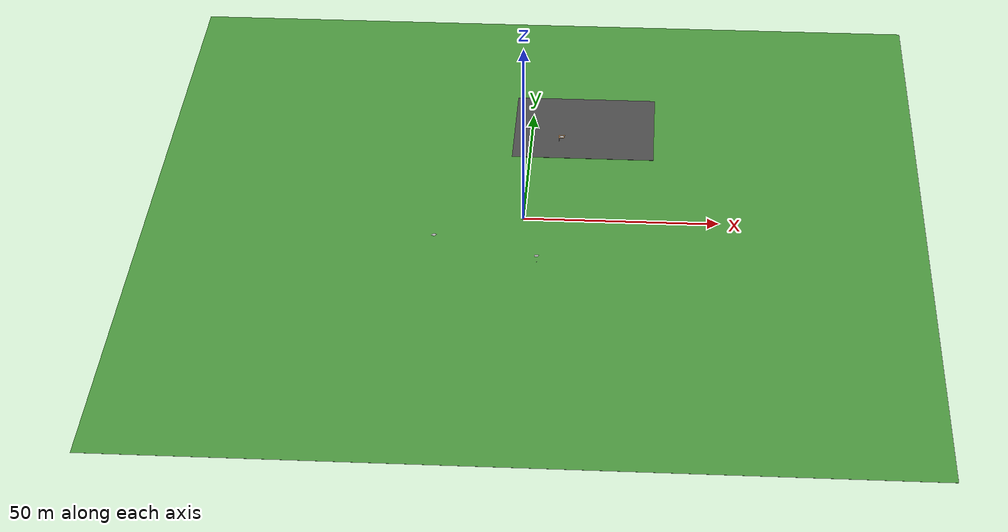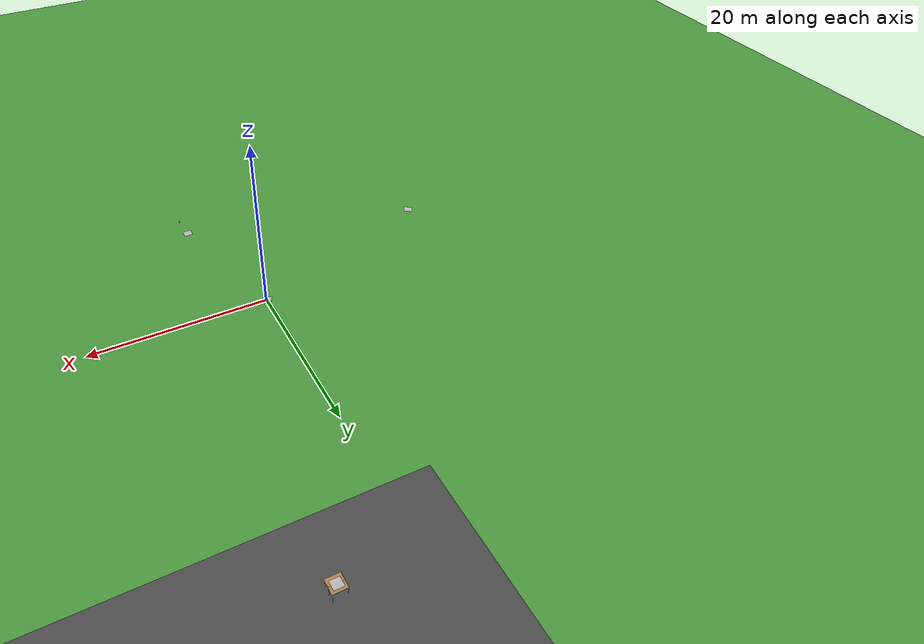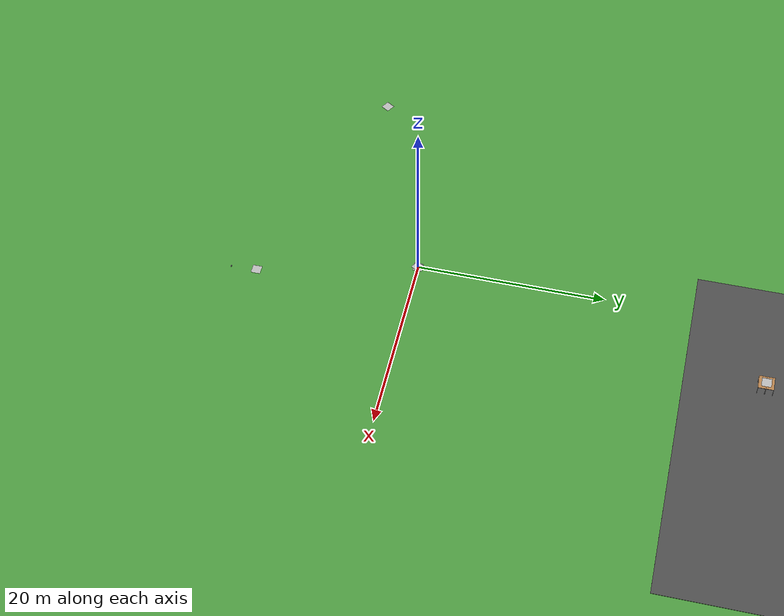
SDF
<sdf version="1.7">
 <world name="default">
  <light name="sun" type="directional">
   <pose>0 0 10 0 -0 0</pose>
   <diffuse>0.8 0.8 0.8 1</diffuse>
   <specular>0.2 0.2 0.2 1</specular>
   <attenuation>
    <range>1000</range>
    <constant>0.9</constant>
    <linear>0.01</linear>
    <quadratic>0.001</quadratic>
   </attenuation>
   <direction>-0.5 0.1 -0.9</direction>
   <spot><inner_angle>0</inner_angle><outer_angle>0</outer_angle><falloff>0</falloff></spot>
  </light>
  <model name="grass_plane">
   <static>1</static>
   <link name="grass_link">
    <collision name="collision"><geometry><box><size>200 200 0.02</size></box></geometry></collision>
    <visual name="visual">
     <cast_shadows>0</cast_shadows>
     <geometry><box><size>200 200 0.02</size></box></geometry>
     <material>
      <script>
       <uri>model://grass_plane/materials/scripts</uri>
       <uri>model://grass_plane/materials/textures</uri>
       <name>grass</name>
      </script>
     </material>
    </visual>
   </link>
   <pose>2.74126 0.128519 -0.01 0 -0 0</pose>
  </model>
  <scene>
   <ambient>0.8 0.8 0.8 1</ambient>
   <background>0.8 0.9 1 1</background>
   <shadows>0</shadows>
   <grid>0</grid>
   <origin_visual>0</origin_visual>
  </scene>
  <physics name="default_physics" default="0" type="ode">
   <ode>
    <solver>
     <type>quick</type>
     <iters>10</iters>
     <sor>1.3</sor>
     <use_dynamic_moi_rescaling>0</use_dynamic_moi_rescaling>
    </solver>
    <constraints>
     <cfm>0</cfm>
     <erp>0.2</erp>
     <contact_max_correcting_vel>100</contact_max_correcting_vel>
     <contact_surface_layer>0.001</contact_surface_layer>
    </constraints>
   </ode>
   <max_step_size>0.004</max_step_size>
   <real_time_factor>1</real_time_factor>
   <real_time_update_rate>250</real_time_update_rate>
  </physics>
  <gravity>0 0 -9.8066</gravity>
  <magnetic_field>6e-06 2.3e-05 -4.2e-05</magnetic_field>
  <atmosphere type="adiabatic"/>
  <spherical_coordinates>
   <surface_model>EARTH_WGS84</surface_model>
   <latitude_deg>0</latitude_deg>
   <longitude_deg>0</longitude_deg>
   <elevation>0</elevation>
   <heading_deg>0</heading_deg>
  </spherical_coordinates>
  <model name="landing_pad_vehicle">
   <static>1</static>
   <link name="landing_pad_link">
    <visual name="visual_landing_pad">
     <pose>0 0 0 0 0 1.5708</pose>
     <cast_shadows>0</cast_shadows>
     <geometry><box><size>1 1 0.001</size></box></geometry>
     <material>
      <script>
       <uri>model://landing_pad/materials/scripts</uri>
       <uri>model://landing_pad/materials/textures</uri>
       <name>landing_pad</name>
      </script>
     </material>
    </visual>
   </link>
   <pose>8.04084 37.3545 1.615 0 0 -1.56663</pose>
  </model>
  <model name="table">
   <static>1</static>
   <link name="table_link_0">
    <collision name="table_surface_0">
     <pose>0 0 1 0 -0 0</pose>
     <geometry><box><size>1.5 0.8 0.03</size></box></geometry>
     <surface><friction><ode><mu>0.6</mu><mu2>0.6</mu2></ode></friction></surface>
    </collision>
    <visual name="visual1_0">
     <pose>0 0 1 0 -0 0</pose>
     <geometry><box><size>1.5 0.8 0.03</size></box></geometry>
     <material>
      <script><uri>file://media/materials/scripts/gazebo.material</uri><name>Gazebo/Wood</name></script>
     </material>
    </visual>
    <collision name="front_left_leg_0">
     <pose>0.68 0.38 0.5 0 -0 0</pose>
     <geometry><cylinder><radius>0.02</radius><length>1</length></cylinder></geometry>
    </collision>
    <visual name="front_left_leg_0">
     <pose>0.68 0.38 0.5 0 -0 0</pose>
     <geometry><cylinder><radius>0.02</radius><length>1</length></cylinder></geometry>
     <material>
      <script><uri>file://media/materials/scripts/gazebo.material</uri><name>Gazebo/Grey</name></script>
     </material>
    </visual>
    <collision name="front_right_leg_0">
     <pose>0.68 -0.38 0.5 0 -0 0</pose>
     <geometry><cylinder><radius>0.02</radius><length>1</length></cylinder></geometry>
    </collision>
    <visual name="front_right_leg_0">
     <pose>0.68 -0.38 0.5 0 -0 0</pose>
     <geometry><cylinder><radius>0.02</radius><length>1</length></cylinder></geometry>
     <material>
      <script><uri>file://media/materials/scripts/gazebo.material</uri><name>Gazebo/Grey</name></script>
     </material>
    </visual>
    <collision name="back_right_leg_0">
     <pose>-0.68 -0.38 0.5 0 -0 0</pose>
     <geometry><cylinder><radius>0.02</radius><length>1</length></cylinder></geometry>
    </collision>
    <visual name="back_right_leg_0">
     <pose>-0.68 -0.38 0.5 0 -0 0</pose>
     <geometry><cylinder><radius>0.02</radius><length>1</length></cylinder></geometry>
     <material>
      <script><uri>file://media/materials/scripts/gazebo.material</uri><name>Gazebo/Grey</name></script>
     </material>
    </visual>
    <collision name="back_left_leg_0">
     <pose>-0.68 0.38 0.5 0 -0 0</pose>
     <geometry><cylinder><radius>0.02</radius><length>1</length></cylinder></geometry>
    </collision>
    <visual name="back_left_leg_0">
     <pose>-0.68 0.38 0.5 0 -0 0</pose>
     <geometry><cylinder><radius>0.02</radius><length>1</length></cylinder></geometry>
     <material>
      <script><uri>file://media/materials/scripts/gazebo.material</uri><name>Gazebo/Grey</name></script>
     </material>
    </visual>
   </link>
   <pose>8.07505 37.7315 0.6 0 -0 0</pose>
  </model>
  <model name="table_clone">
   <static>1</static>
   <link name="table_clone_link">
    <collision name="table_surface_clone">
     <pose>0 0 1 0 -0 0</pose>
     <geometry><box><size>1.5 0.8 0.03</size></box></geometry>
     <surface><friction><ode><mu>0.6</mu><mu2>0.6</mu2></ode></friction></surface>
    </collision>
    <visual name="visual1">
     <pose>0 0 1 0 -0 0</pose>
     <geometry><box><size>1.5 0.8 0.03</size></box></geometry>
     <material>
      <script><uri>file://media/materials/scripts/gazebo.material</uri><name>Gazebo/Wood</name></script>
     </material>
    </visual>
    <collision name="front_left_leg">
     <pose>0.68 0.38 0.5 0 -0 0</pose>
     <geometry><cylinder><radius>0.02</radius><length>1</length></cylinder></geometry>
    </collision>
    <visual name="front_left_leg">
     <pose>0.68 0.38 0.5 0 -0 0</pose>
     <geometry><cylinder><radius>0.02</radius><length>1</length></cylinder></geometry>
     <material>
      <script><uri>file://media/materials/scripts/gazebo.material</uri><name>Gazebo/Grey</name></script>
     </material>
    </visual>
    <collision name="front_right_leg">
     <pose>0.68 -0.38 0.5 0 -0 0</pose>
     <geometry><cylinder><radius>0.02</radius><length>1</length></cylinder></geometry>
    </collision>
    <visual name="front_right_leg">
     <pose>0.68 -0.38 0.5 0 -0 0</pose>
     <geometry><cylinder><radius>0.02</radius><length>1</length></cylinder></geometry>
     <material>
      <script><uri>file://media/materials/scripts/gazebo.material</uri><name>Gazebo/Grey</name></script>
     </material>
    </visual>
    <collision name="back_right_leg">
     <pose>-0.68 -0.38 0.5 0 -0 0</pose>
     <geometry><cylinder><radius>0.02</radius><length>1</length></cylinder></geometry>
    </collision>
    <visual name="back_right_leg">
     <pose>-0.68 -0.38 0.5 0 -0 0</pose>
     <geometry><cylinder><radius>0.02</radius><length>1</length></cylinder></geometry>
     <material>
      <script><uri>file://media/materials/scripts/gazebo.material</uri><name>Gazebo/Grey</name></script>
     </material>
    </visual>
    <collision name="back_left_leg">
     <pose>-0.68 0.38 0.5 0 -0 0</pose>
     <geometry><cylinder><radius>0.02</radius><length>1</length></cylinder></geometry>
    </collision>
    <visual name="back_left_leg">
     <pose>-0.68 0.38 0.5 0 -0 0</pose>
     <geometry><cylinder><radius>0.02</radius><length>1</length></cylinder></geometry>
     <material>
      <script><uri>file://media/materials/scripts/gazebo.material</uri><name>Gazebo/Grey</name></script>
     </material>
    </visual>
   </link>
   <pose>8.0788 36.937 0.6 0 -0 0</pose>
  </model>
  <model name="start_landing_pad">
   <static>1</static>
   <link name="landing_pad_link">
    <visual name="visual_landing_pad">
     <pose>0 0 0 0 -0 1.5708</pose>
     <cast_shadows>0</cast_shadows>
     <geometry><box><size>1 1 0.001</size></box></geometry>
     <material>
      <script>
       <uri>model://landing_pad/materials/scripts</uri>
       <uri>model://landing_pad/materials/textures</uri>
       <name>landing_pad</name>
      </script>
     </material>
    </visual>
   </link>
   <pose>0 0 0 0 0 -1.56663</pose>
  </model>
  <model name="landing_pad_people">
   <static>1</static>
   <link name="landing_pad_link">
    <visual name="visual_landing_pad">
     <pose>0 0 0 0 -0 1.5708</pose>
     <cast_shadows>0</cast_shadows>
     <geometry><box><size>1 1 0.001</size></box></geometry>
     <material>
      <script>
       <uri>model://landing_pad/materials/scripts</uri>
       <uri>model://landing_pad/materials/textures</uri>
       <name>landing_pad</name>
      </script>
     </material>
    </visual>
   </link>
   <pose>4.07319 -16.6681 0 0 0 -1.56663</pose>
  </model>
  <model name="landing_pad_rotated">
   <static>1</static>
   <link name="landing_pad_link">
    <visual name="visual_landing_pad">
     <pose>0 0 0 0 -0 1.5708</pose>
     <cast_shadows>0</cast_shadows>
     <geometry><box><size>1 1 0.001</size></box></geometry>
     <material>
      <script>
       <uri>model://landing_pad/materials/scripts</uri>
       <uri>model://landing_pad/materials/textures</uri>
       <name>landing_pad</name>
      </script>
     </material>
    </visual>
   </link>
   <pose>-22.4976 -8.65881 0 0 -0 1.01939</pose>
  </model>
  <model name="asphalt_plane">
   <static>1</static>
   <link name="asphalt_plane_link">
    <collision name="collision"><geometry><box><size>37.704 30.1942 0.1</size></box></geometry></collision>
    <visual name="visual">
     <cast_shadows>0</cast_shadows>
     <geometry><box><size>37.704 30.1942 0.1</size></box></geometry>
     <material>
      <script>
       <uri>model://asphalt_plane/materials/scripts</uri>
       <uri>model://asphalt_plane/materials/textures</uri>
       <name>vrc/asphalt</name>
      </script>
     </material>
    </visual>
   </link>
   <pose>13.9724 44.3084 0 0 -0 0</pose>
  </model>
  <model name="beer">
   <link name="beer_link">
    <pose>0 0 0.115 0 -0 0</pose>
    <inertial>
     <mass>0.39</mass>
     <inertia><ixx>0.00058</ixx><ixy>0</ixy><ixz>0</ixz><iyy>0.00058</iyy><iyz>0</iyz><izz>0.00019</izz></inertia>
    </inertial>
    <collision name="collision">
     <geometry><cylinder><radius>0.055</radius><length>0.23</length></cylinder></geometry>
    </collision>
    <visual name="visual">
     <geometry><cylinder><radius>0.055</radius><length>0.23</length></cylinder></geometry>
     <material>
      <script>
       <uri>https://fuel.ignitionrobotics.org/1.0/caguero/models/beer/2/files/materials/scripts</uri>
       <uri>https://fuel.ignitionrobotics.org/1.0/caguero/models/beer/2/files/materials/textures</uri>
       <name>Beer/Diffuse</name>
      </script>
     </material>
    </visual>
   </link>
   <pose>4.30871 -19.3911 1.1e-05 8.1e-05 0.000195 0.012798</pose>
  </model>
  <model name="landing_pad_clone_clone_0_clone">
   <static>1</static>
   <link name="landing_pad_link">
    <visual name="visual_landing_pad">
     <pose>0 0 0 0 -0 1.5708</pose>
     <cast_shadows>0</cast_shadows>
     <geometry><box><size>1 1 0.001</size></box></geometry>
     <material>
      <script>
       <uri>model://landing_pad/materials/scripts</uri>
       <uri>model://landing_pad/materials/textures</uri>
       <name>landing_pad</name>
      </script>
     </material>
    </visual>
   </link>
   <pose>-0.050504 -0.036673 0.020098 0 -0 1.01939</pose>
  </model>
 </world>
</sdf>
